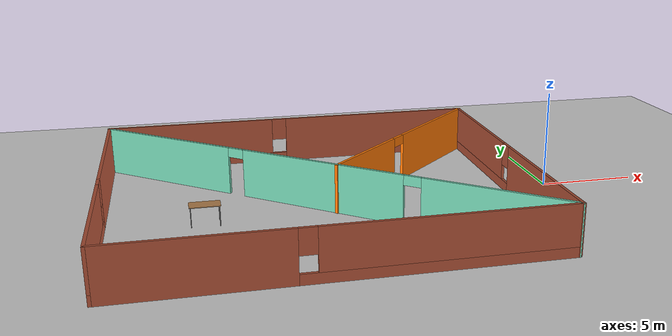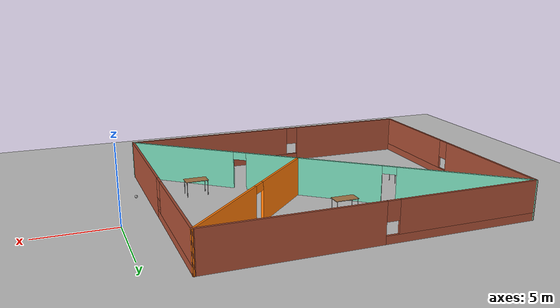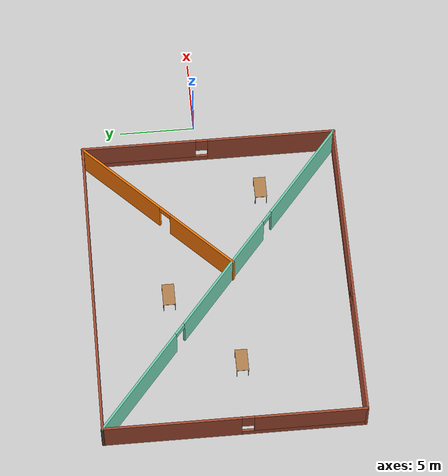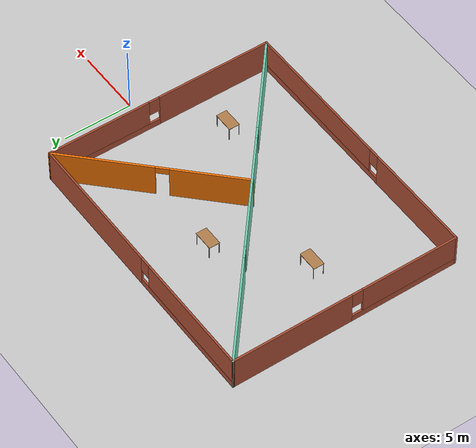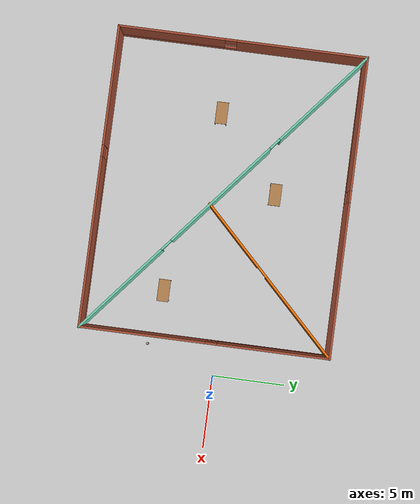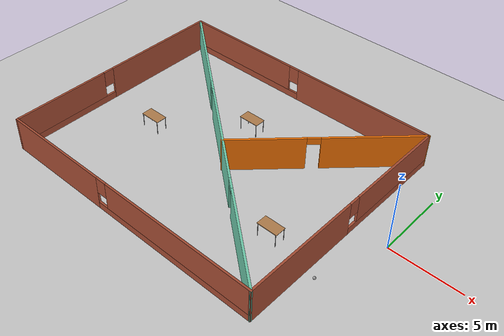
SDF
<sdf version="1.6">
 <world name="default">
  <light name="sun" type="directional">
   <pose>0 0 10 0 -0 0</pose>
   <diffuse>0.8 0.8 0.8 1</diffuse>
   <specular>0.2 0.2 0.2 1</specular>
   <attenuation>
    <range>1000</range>
    <constant>0.9</constant>
    <linear>0.01</linear>
    <quadratic>0.001</quadratic>
   </attenuation>
   <direction>-0.5 0.1 -0.9</direction>
  </light>
  <model name="ground_plane">
   <static>1</static>
   <link name="link">
    <collision name="collision">
     <geometry><plane><normal>0 0 1</normal><size>100 100</size></plane></geometry>
     <surface>
      <contact><collide_bitmask>65535</collide_bitmask></contact>
      <friction><ode><mu>100</mu><mu2>50</mu2></ode></friction>
     </surface>
    </collision>
    <visual name="visual">
     <cast_shadows>0</cast_shadows>
     <geometry><plane><normal>0 0 1</normal><size>100 100</size></plane></geometry>
     <material>
      <script><uri>file://media/materials/scripts/gazebo.material</uri><name>Gazebo/Grey</name></script>
     </material>
    </visual>
   </link>
  </model>
  <gravity>0 0 -9.8</gravity>
  <magnetic_field>6e-06 2.3e-05 -4.2e-05</magnetic_field>
  <atmosphere type="adiabatic"/>
  <physics name="default_physics" default="0" type="ode">
   <max_step_size>0.001</max_step_size>
   <real_time_factor>1</real_time_factor>
   <real_time_update_rate>1000</real_time_update_rate>
  </physics>
  <scene><ambient>0.4 0.4 0.4 1</ambient><background>0.7 0.7 0.7 1</background><shadows>1</shadows></scene>
  <spherical_coordinates>
   <surface_model>EARTH_WGS84</surface_model>
   <latitude_deg>0</latitude_deg>
   <longitude_deg>0</longitude_deg>
   <elevation>0</elevation>
   <heading_deg>0</heading_deg>
  </spherical_coordinates>
  <model name="world_0">
   <pose>-12.5522 -0.825797 0 0 -0 0</pose>
   <link name="Wall_0">
    <pose>-10.1752 -0.000233 0 0 0 -1.5708</pose>
    <visual name="Wall_0_Visual_0">
     <pose>-4.03638 0 1.25 0 -0 0</pose>
     <geometry><box><size>8.92724 0.15 2.5</size></box></geometry>
     <material>
      <script><uri>file://media/materials/scripts/gazebo.material</uri><name>Gazebo/Bricks</name></script>
      <ambient>1 1 1 1</ambient>
     </material>
     <meta><layer>0</layer></meta>
    </visual>
    <collision name="Wall_0_Collision_0">
     <geometry><box><size>8.92724 0.15 2.5</size></box></geometry>
     <pose>-4.03638 0 1.25 0 -0 0</pose>
    </collision>
    <visual name="Wall_0_Visual_1">
     <pose>4.46362 0 0.25 0 -0 0</pose>
     <geometry><box><size>8.07276 0.15 0.5</size></box></geometry>
     <material>
      <script><uri>file://media/materials/scripts/gazebo.material</uri><name>Gazebo/Bricks</name></script>
      <ambient>1 1 1 1</ambient>
     </material>
     <meta><layer>0</layer></meta>
    </visual>
    <collision name="Wall_0_Collision_1">
     <geometry><box><size>8.07276 0.15 0.5</size></box></geometry>
     <pose>4.46362 0 0.25 0 -0 0</pose>
    </collision>
    <visual name="Wall_0_Visual_2">
     <pose>4.86362 0 1.5 0 -0 0</pose>
     <geometry><box><size>7.27276 0.15 2</size></box></geometry>
     <material>
      <script><uri>file://media/materials/scripts/gazebo.material</uri><name>Gazebo/Bricks</name></script>
      <ambient>1 1 1 1</ambient>
     </material>
     <meta><layer>0</layer></meta>
    </visual>
    <collision name="Wall_0_Collision_2">
     <geometry><box><size>7.27276 0.15 2</size></box></geometry>
     <pose>4.86362 0 1.5 0 -0 0</pose>
    </collision>
    <visual name="Wall_0_Visual_3">
     <pose>0.827243 0 1.9 0 -0 0</pose>
     <geometry><box><size>0.8 0.15 1.2</size></box></geometry>
     <material>
      <script><uri>file://media/materials/scripts/gazebo.material</uri><name>Gazebo/Bricks</name></script>
      <ambient>1 1 1 1</ambient>
     </material>
     <meta><layer>0</layer></meta>
    </visual>
    <collision name="Wall_0_Collision_3">
     <geometry><box><size>0.8 0.15 1.2</size></box></geometry>
     <pose>0.827243 0 1.9 0 -0 0</pose>
    </collision>
   </link>
   <link name="Wall_1">
    <pose>-0.000233 -8.42523 0 0 -0 0</pose>
    <visual name="Wall_1_Visual_0">
     <pose>-6.16854 0 1.25 0 -0 0</pose>
     <geometry><box><size>8.16293 0.15 2.5</size></box></geometry>
     <material>
      <script><uri>file://media/materials/scripts/gazebo.material</uri><name>Gazebo/Bricks</name></script>
      <ambient>1 1 1 1</ambient>
     </material>
     <meta><layer>0</layer></meta>
    </visual>
    <collision name="Wall_1_Collision_0">
     <geometry><box><size>8.16293 0.15 2.5</size></box></geometry>
     <pose>-6.16854 0 1.25 0 -0 0</pose>
    </collision>
    <visual name="Wall_1_Visual_1">
     <pose>4.08146 0 0.25 0 -0 0</pose>
     <geometry><box><size>12.3371 0.15 0.5</size></box></geometry>
     <material>
      <script><uri>file://media/materials/scripts/gazebo.material</uri><name>Gazebo/Bricks</name></script>
      <ambient>1 1 1 1</ambient>
     </material>
     <meta><layer>0</layer></meta>
    </visual>
    <collision name="Wall_1_Collision_1">
     <geometry><box><size>12.3371 0.15 0.5</size></box></geometry>
     <pose>4.08146 0 0.25 0 -0 0</pose>
    </collision>
    <visual name="Wall_1_Visual_2">
     <pose>4.48146 0 1.5 0 -0 0</pose>
     <geometry><box><size>11.5371 0.15 2</size></box></geometry>
     <material>
      <script><uri>file://media/materials/scripts/gazebo.material</uri><name>Gazebo/Bricks</name></script>
      <ambient>1 1 1 1</ambient>
     </material>
     <meta><layer>0</layer></meta>
    </visual>
    <collision name="Wall_1_Collision_2">
     <geometry><box><size>11.5371 0.15 2</size></box></geometry>
     <pose>4.48146 0 1.5 0 -0 0</pose>
    </collision>
    <visual name="Wall_1_Visual_3">
     <pose>-1.68707 0 1.9 0 -0 0</pose>
     <geometry><box><size>0.8 0.15 1.2</size></box></geometry>
     <material>
      <script><uri>file://media/materials/scripts/gazebo.material</uri><name>Gazebo/Bricks</name></script>
      <ambient>1 1 1 1</ambient>
     </material>
     <meta><layer>0</layer></meta>
    </visual>
    <collision name="Wall_1_Collision_3">
     <geometry><box><size>0.8 0.15 1.2</size></box></geometry>
     <pose>-1.68707 0 1.9 0 -0 0</pose>
    </collision>
   </link>
   <link name="Wall_2">
    <pose>10.1748 -0.000233 0 0 -0 1.5708</pose>
    <visual name="Wall_2_Visual_0">
     <pose>-4.21999 0 1.25 0 -0 0</pose>
     <geometry><box><size>8.56003 0.15 2.5</size></box></geometry>
     <material>
      <script><uri>file://media/materials/scripts/gazebo.material</uri><name>Gazebo/Bricks</name></script>
      <ambient>1 1 1 1</ambient>
     </material>
     <meta><layer>0</layer></meta>
    </visual>
    <collision name="Wall_2_Collision_0">
     <geometry><box><size>8.56003 0.15 2.5</size></box></geometry>
     <pose>-4.21999 0 1.25 0 -0 0</pose>
    </collision>
    <visual name="Wall_2_Visual_1">
     <pose>4.28001 0 0.25 0 -0 0</pose>
     <geometry><box><size>8.43997 0.15 0.5</size></box></geometry>
     <material>
      <script><uri>file://media/materials/scripts/gazebo.material</uri><name>Gazebo/Bricks</name></script>
      <ambient>1 1 1 1</ambient>
     </material>
     <meta><layer>0</layer></meta>
    </visual>
    <collision name="Wall_2_Collision_1">
     <geometry><box><size>8.43997 0.15 0.5</size></box></geometry>
     <pose>4.28001 0 0.25 0 -0 0</pose>
    </collision>
    <visual name="Wall_2_Visual_2">
     <pose>4.68001 0 1.5 0 -0 0</pose>
     <geometry><box><size>7.63997 0.15 2</size></box></geometry>
     <material>
      <script><uri>file://media/materials/scripts/gazebo.material</uri><name>Gazebo/Bricks</name></script>
      <ambient>1 1 1 1</ambient>
     </material>
     <meta><layer>0</layer></meta>
    </visual>
    <collision name="Wall_2_Collision_2">
     <geometry><box><size>7.63997 0.15 2</size></box></geometry>
     <pose>4.68001 0 1.5 0 -0 0</pose>
    </collision>
    <visual name="Wall_2_Visual_3">
     <pose>0.460026 0 1.9 0 -0 0</pose>
     <geometry><box><size>0.8 0.15 1.2</size></box></geometry>
     <material>
      <script><uri>file://media/materials/scripts/gazebo.material</uri><name>Gazebo/Bricks</name></script>
      <ambient>1 1 1 1</ambient>
     </material>
     <meta><layer>0</layer></meta>
    </visual>
    <collision name="Wall_2_Collision_3">
     <geometry><box><size>0.8 0.15 1.2</size></box></geometry>
     <pose>0.460026 0 1.9 0 -0 0</pose>
    </collision>
   </link>
   <link name="Wall_3">
    <pose>-0.000233 8.42477 0 0 -0 3.14159</pose>
    <visual name="Wall_3_Visual_0">
     <pose>-4.94408 0 1.25 0 -0 0</pose>
     <geometry><box><size>10.6118 0.15 2.5</size></box></geometry>
     <material>
      <script><uri>file://media/materials/scripts/gazebo.material</uri><name>Gazebo/Bricks</name></script>
      <ambient>1 1 1 1</ambient>
     </material>
     <meta><layer>0</layer></meta>
    </visual>
    <collision name="Wall_3_Collision_0">
     <geometry><box><size>10.6118 0.15 2.5</size></box></geometry>
     <pose>-4.94408 0 1.25 0 -0 0</pose>
    </collision>
    <visual name="Wall_3_Visual_1">
     <pose>5.30592 0 0.25 0 -0 0</pose>
     <geometry><box><size>9.88815 0.15 0.5</size></box></geometry>
     <material>
      <script><uri>file://media/materials/scripts/gazebo.material</uri><name>Gazebo/Bricks</name></script>
      <ambient>1 1 1 1</ambient>
     </material>
     <meta><layer>0</layer></meta>
    </visual>
    <collision name="Wall_3_Collision_1">
     <geometry><box><size>9.88815 0.15 0.5</size></box></geometry>
     <pose>5.30592 0 0.25 0 -0 0</pose>
    </collision>
    <visual name="Wall_3_Visual_2">
     <pose>5.70592 0 1.5 0 -0 0</pose>
     <geometry><box><size>9.08815 0.15 2</size></box></geometry>
     <material>
      <script><uri>file://media/materials/scripts/gazebo.material</uri><name>Gazebo/Bricks</name></script>
      <ambient>1 1 1 1</ambient>
     </material>
     <meta><layer>0</layer></meta>
    </visual>
    <collision name="Wall_3_Collision_2">
     <geometry><box><size>9.08815 0.15 2</size></box></geometry>
     <pose>5.70592 0 1.5 0 -0 0</pose>
    </collision>
    <visual name="Wall_3_Visual_3">
     <pose>0.761848 0 1.9 0 -0 0</pose>
     <geometry><box><size>0.8 0.15 1.2</size></box></geometry>
     <material>
      <script><uri>file://media/materials/scripts/gazebo.material</uri><name>Gazebo/Bricks</name></script>
      <ambient>1 1 1 1</ambient>
     </material>
     <meta><layer>0</layer></meta>
    </visual>
    <collision name="Wall_3_Collision_3">
     <geometry><box><size>0.8 0.15 1.2</size></box></geometry>
     <pose>0.761848 0 1.9 0 -0 0</pose>
    </collision>
   </link>
   <link name="Wall_4">
    <pose>-0.000233 -0.000233 0 0 0 -0.691588</pose>
    <visual name="Wall_4_Visual_0">
     <pose>-9.22114 0 1.25 0 -0 0</pose>
     <geometry><box><size>8.12825 0.15 2.5</size></box></geometry>
     <material>
      <script><uri>file://media/materials/scripts/gazebo.material</uri><name>Gazebo/Grey</name></script>
      <ambient>0.435294 0.796078 0.67451 1</ambient>
     </material>
     <meta><layer>0</layer></meta>
    </visual>
    <collision name="Wall_4_Collision_0">
     <geometry><box><size>8.12825 0.15 2.5</size></box></geometry>
     <pose>-9.22114 0 1.25 0 -0 0</pose>
    </collision>
    <visual name="Wall_4_Visual_1">
     <pose>0.265927 0 1.25 0 -0 0</pose>
     <geometry><box><size>9.04589 0.15 2.5</size></box></geometry>
     <material>
      <script><uri>file://media/materials/scripts/gazebo.material</uri><name>Gazebo/Grey</name></script>
      <ambient>0.435294 0.796078 0.67451 1</ambient>
     </material>
     <meta><layer>0</layer></meta>
    </visual>
    <collision name="Wall_4_Collision_1">
     <geometry><box><size>9.04589 0.15 2.5</size></box></geometry>
     <pose>0.265927 0 1.25 0 -0 0</pose>
    </collision>
    <visual name="Wall_4_Visual_2">
     <pose>9.48707 0 1.25 0 -0 0</pose>
     <geometry><box><size>7.5964 0.15 2.5</size></box></geometry>
     <material>
      <script><uri>file://media/materials/scripts/gazebo.material</uri><name>Gazebo/Grey</name></script>
      <ambient>0.435294 0.796078 0.67451 1</ambient>
     </material>
     <meta><layer>0</layer></meta>
    </visual>
    <collision name="Wall_4_Collision_2">
     <geometry><box><size>7.5964 0.15 2.5</size></box></geometry>
     <pose>9.48707 0 1.25 0 -0 0</pose>
    </collision>
    <visual name="Wall_4_Visual_3">
     <pose>-4.70702 0 2.25 0 -0 0</pose>
     <geometry><box><size>0.9 0.15 0.5</size></box></geometry>
     <material>
      <script><uri>file://media/materials/scripts/gazebo.material</uri><name>Gazebo/Grey</name></script>
      <ambient>0.435294 0.796078 0.67451 1</ambient>
     </material>
     <meta><layer>0</layer></meta>
    </visual>
    <collision name="Wall_4_Collision_3">
     <geometry><box><size>0.9 0.15 0.5</size></box></geometry>
     <pose>-4.70702 0 2.25 0 -0 0</pose>
    </collision>
    <visual name="Wall_4_Visual_4">
     <pose>5.23887 0 2.25 0 -0 0</pose>
     <geometry><box><size>0.9 0.15 0.5</size></box></geometry>
     <material>
      <script><uri>file://media/materials/scripts/gazebo.material</uri><name>Gazebo/Grey</name></script>
      <ambient>0.435294 0.796078 0.67451 1</ambient>
     </material>
     <meta><layer>0</layer></meta>
    </visual>
    <collision name="Wall_4_Collision_4">
     <geometry><box><size>0.9 0.15 0.5</size></box></geometry>
     <pose>5.23887 0 2.25 0 -0 0</pose>
    </collision>
   </link>
   <link name="Wall_6">
    <pose>5.54322 3.79322 0 0 0 -2.35619</pose>
    <visual name="Wall_6_Visual_0">
     <pose>-3.1733 0 1.25 0 -0 0</pose>
     <geometry><box><size>6.9034 0.15 2.5</size></box></geometry>
     <material>
      <script><uri>file://media/materials/scripts/gazebo.material</uri><name>Gazebo/Grey</name></script>
      <ambient>0.996078 0.47451 0.0196078 1</ambient>
     </material>
     <meta><layer>0</layer></meta>
    </visual>
    <collision name="Wall_6_Collision_0">
     <geometry><box><size>6.9034 0.15 2.5</size></box></geometry>
     <pose>-3.1733 0 1.25 0 -0 0</pose>
    </collision>
    <visual name="Wall_6_Visual_1">
     <pose>3.9017 0 1.25 0 -0 0</pose>
     <geometry><box><size>5.4466 0.15 2.5</size></box></geometry>
     <material>
      <script><uri>file://media/materials/scripts/gazebo.material</uri><name>Gazebo/Grey</name></script>
      <ambient>0.996078 0.47451 0.0196078 1</ambient>
     </material>
     <meta><layer>0</layer></meta>
    </visual>
    <collision name="Wall_6_Collision_1">
     <geometry><box><size>5.4466 0.15 2.5</size></box></geometry>
     <pose>3.9017 0 1.25 0 -0 0</pose>
    </collision>
    <visual name="Wall_6_Visual_2">
     <pose>0.728401 0 2.25 0 -0 0</pose>
     <geometry><box><size>0.9 0.15 0.5</size></box></geometry>
     <material>
      <script><uri>file://media/materials/scripts/gazebo.material</uri><name>Gazebo/Grey</name></script>
      <ambient>0.996078 0.47451 0.0196078 1</ambient>
     </material>
     <meta><layer>0</layer></meta>
    </visual>
    <collision name="Wall_6_Collision_2">
     <geometry><box><size>0.9 0.15 0.5</size></box></geometry>
     <pose>0.728401 0 2.25 0 -0 0</pose>
    </collision>
   </link>
   <static>1</static>
  </model>
  <model name="table">
   <static>1</static>
   <link name="link">
    <collision name="surface">
     <pose>0 0 1 0 -0 0</pose>
     <geometry><box><size>1.5 0.8 0.03</size></box></geometry>
     <surface><friction><ode><mu>0.6</mu><mu2>0.6</mu2></ode></friction></surface>
    </collision>
    <visual name="visual1">
     <pose>0 0 1 0 -0 0</pose>
     <geometry><box><size>1.5 0.8 0.03</size></box></geometry>
     <material>
      <script><uri>file://media/materials/scripts/gazebo.material</uri><name>Gazebo/Wood</name></script>
     </material>
    </visual>
    <collision name="front_left_leg">
     <pose>0.68 0.38 0.5 0 -0 0</pose>
     <geometry><cylinder><radius>0.02</radius><length>1</length></cylinder></geometry>
    </collision>
    <visual name="front_left_leg">
     <pose>0.68 0.38 0.5 0 -0 0</pose>
     <geometry><cylinder><radius>0.02</radius><length>1</length></cylinder></geometry>
     <material>
      <script><uri>file://media/materials/scripts/gazebo.material</uri><name>Gazebo/Grey</name></script>
     </material>
    </visual>
    <collision name="front_right_leg">
     <pose>0.68 -0.38 0.5 0 -0 0</pose>
     <geometry><cylinder><radius>0.02</radius><length>1</length></cylinder></geometry>
    </collision>
    <visual name="front_right_leg">
     <pose>0.68 -0.38 0.5 0 -0 0</pose>
     <geometry><cylinder><radius>0.02</radius><length>1</length></cylinder></geometry>
     <material>
      <script><uri>file://media/materials/scripts/gazebo.material</uri><name>Gazebo/Grey</name></script>
     </material>
    </visual>
    <collision name="back_right_leg">
     <pose>-0.68 -0.38 0.5 0 -0 0</pose>
     <geometry><cylinder><radius>0.02</radius><length>1</length></cylinder></geometry>
    </collision>
    <visual name="back_right_leg">
     <pose>-0.68 -0.38 0.5 0 -0 0</pose>
     <geometry><cylinder><radius>0.02</radius><length>1</length></cylinder></geometry>
     <material>
      <script><uri>file://media/materials/scripts/gazebo.material</uri><name>Gazebo/Grey</name></script>
     </material>
    </visual>
    <collision name="back_left_leg">
     <pose>-0.68 0.38 0.5 0 -0 0</pose>
     <geometry><cylinder><radius>0.02</radius><length>1</length></cylinder></geometry>
    </collision>
    <visual name="back_left_leg">
     <pose>-0.68 0.38 0.5 0 -0 0</pose>
     <geometry><cylinder><radius>0.02</radius><length>1</length></cylinder></geometry>
     <material>
      <script><uri>file://media/materials/scripts/gazebo.material</uri><name>Gazebo/Grey</name></script>
     </material>
    </visual>
   </link>
   <pose>-12.908 2.67749 0 0 -0 0</pose>
  </model>
  <model name="table_0">
   <static>1</static>
   <link name="link">
    <collision name="surface">
     <pose>0 0 1 0 -0 0</pose>
     <geometry><box><size>1.5 0.8 0.03</size></box></geometry>
     <surface><friction><ode><mu>0.6</mu><mu2>0.6</mu2></ode></friction></surface>
    </collision>
    <visual name="visual1">
     <pose>0 0 1 0 -0 0</pose>
     <geometry><box><size>1.5 0.8 0.03</size></box></geometry>
     <material>
      <script><uri>file://media/materials/scripts/gazebo.material</uri><name>Gazebo/Wood</name></script>
     </material>
    </visual>
    <collision name="front_left_leg">
     <pose>0.68 0.38 0.5 0 -0 0</pose>
     <geometry><cylinder><radius>0.02</radius><length>1</length></cylinder></geometry>
    </collision>
    <visual name="front_left_leg">
     <pose>0.68 0.38 0.5 0 -0 0</pose>
     <geometry><cylinder><radius>0.02</radius><length>1</length></cylinder></geometry>
     <material>
      <script><uri>file://media/materials/scripts/gazebo.material</uri><name>Gazebo/Grey</name></script>
     </material>
    </visual>
    <collision name="front_right_leg">
     <pose>0.68 -0.38 0.5 0 -0 0</pose>
     <geometry><cylinder><radius>0.02</radius><length>1</length></cylinder></geometry>
    </collision>
    <visual name="front_right_leg">
     <pose>0.68 -0.38 0.5 0 -0 0</pose>
     <geometry><cylinder><radius>0.02</radius><length>1</length></cylinder></geometry>
     <material>
      <script><uri>file://media/materials/scripts/gazebo.material</uri><name>Gazebo/Grey</name></script>
     </material>
    </visual>
    <collision name="back_right_leg">
     <pose>-0.68 -0.38 0.5 0 -0 0</pose>
     <geometry><cylinder><radius>0.02</radius><length>1</length></cylinder></geometry>
    </collision>
    <visual name="back_right_leg">
     <pose>-0.68 -0.38 0.5 0 -0 0</pose>
     <geometry><cylinder><radius>0.02</radius><length>1</length></cylinder></geometry>
     <material>
      <script><uri>file://media/materials/scripts/gazebo.material</uri><name>Gazebo/Grey</name></script>
     </material>
    </visual>
    <collision name="back_left_leg">
     <pose>-0.68 0.38 0.5 0 -0 0</pose>
     <geometry><cylinder><radius>0.02</radius><length>1</length></cylinder></geometry>
    </collision>
    <visual name="back_left_leg">
     <pose>-0.68 0.38 0.5 0 -0 0</pose>
     <geometry><cylinder><radius>0.02</radius><length>1</length></cylinder></geometry>
     <material>
      <script><uri>file://media/materials/scripts/gazebo.material</uri><name>Gazebo/Grey</name></script>
     </material>
    </visual>
   </link>
   <pose>-5.44883 -4.03489 0 0 -0 0</pose>
  </model>
  <model name="table_1">
   <static>1</static>
   <link name="link">
    <collision name="surface">
     <pose>0 0 1 0 -0 0</pose>
     <geometry><box><size>1.5 0.8 0.03</size></box></geometry>
     <surface><friction><ode><mu>0.6</mu><mu2>0.6</mu2></ode></friction></surface>
    </collision>
    <visual name="visual1">
     <pose>0 0 1 0 -0 0</pose>
     <geometry><box><size>1.5 0.8 0.03</size></box></geometry>
     <material>
      <script><uri>file://media/materials/scripts/gazebo.material</uri><name>Gazebo/Wood</name></script>
     </material>
    </visual>
    <collision name="front_left_leg">
     <pose>0.68 0.38 0.5 0 -0 0</pose>
     <geometry><cylinder><radius>0.02</radius><length>1</length></cylinder></geometry>
    </collision>
    <visual name="front_left_leg">
     <pose>0.68 0.38 0.5 0 -0 0</pose>
     <geometry><cylinder><radius>0.02</radius><length>1</length></cylinder></geometry>
     <material>
      <script><uri>file://media/materials/scripts/gazebo.material</uri><name>Gazebo/Grey</name></script>
     </material>
    </visual>
    <collision name="front_right_leg">
     <pose>0.68 -0.38 0.5 0 -0 0</pose>
     <geometry><cylinder><radius>0.02</radius><length>1</length></cylinder></geometry>
    </collision>
    <visual name="front_right_leg">
     <pose>0.68 -0.38 0.5 0 -0 0</pose>
     <geometry><cylinder><radius>0.02</radius><length>1</length></cylinder></geometry>
     <material>
      <script><uri>file://media/materials/scripts/gazebo.material</uri><name>Gazebo/Grey</name></script>
     </material>
    </visual>
    <collision name="back_right_leg">
     <pose>-0.68 -0.38 0.5 0 -0 0</pose>
     <geometry><cylinder><radius>0.02</radius><length>1</length></cylinder></geometry>
    </collision>
    <visual name="back_right_leg">
     <pose>-0.68 -0.38 0.5 0 -0 0</pose>
     <geometry><cylinder><radius>0.02</radius><length>1</length></cylinder></geometry>
     <material>
      <script><uri>file://media/materials/scripts/gazebo.material</uri><name>Gazebo/Grey</name></script>
     </material>
    </visual>
    <collision name="back_left_leg">
     <pose>-0.68 0.38 0.5 0 -0 0</pose>
     <geometry><cylinder><radius>0.02</radius><length>1</length></cylinder></geometry>
    </collision>
    <visual name="back_left_leg">
     <pose>-0.68 0.38 0.5 0 -0 0</pose>
     <geometry><cylinder><radius>0.02</radius><length>1</length></cylinder></geometry>
     <material>
      <script><uri>file://media/materials/scripts/gazebo.material</uri><name>Gazebo/Grey</name></script>
     </material>
    </visual>
   </link>
   <pose>-18.0209 -1.67407 0 0 -0 0</pose>
  </model>
  <model name="wht_ball">
   <link name="link_0">
    <inertial>
     <mass>1</mass>
     <inertia><ixx>0.1</ixx><ixy>0</ixy><ixz>0</ixz><iyy>0.1</iyy><iyz>0</iyz><izz>0.1</izz></inertia>
    </inertial>
    <visual name="visual">
     <geometry><sphere><radius>0.1</radius></sphere></geometry>
     <material>
      <lighting>1</lighting>
      <script><uri>file://media/materials/scripts/gazebo.material</uri><name>Gazebo/Grey</name></script>
      <shader type="pixel"><normal_map>__default__</normal_map></shader>
      <ambient>1 1 1 1</ambient>
      <diffuse>1 1 1 1</diffuse>
      <specular>1 1 1 1</specular>
      <emissive>1 1 1 1</emissive>
     </material>
    </visual>
    <collision name="collision">
     <geometry><sphere><radius>0.1</radius></sphere></geometry>
     <surface>
      <friction>
       <ode><mu>1</mu><mu2>1</mu2><fdir1>0 0 0</fdir1><slip1>0</slip1><slip2>0</slip2></ode>
       <torsional>
        <coefficient>1</coefficient>
        <patch_radius>0</patch_radius>
        <surface_radius>0</surface_radius>
        <use_patch_radius>1</use_patch_radius>
        <ode><slip>0</slip></ode>
       </torsional>
      </friction>
      <bounce><restitution_coefficient>0</restitution_coefficient><threshold>1e+06</threshold></bounce>
      <contact>
       <collide_without_contact>0</collide_without_contact>
       <collide_without_contact_bitmask>1</collide_without_contact_bitmask>
       <collide_bitmask>1</collide_bitmask>
       <ode>
        <soft_cfm>0</soft_cfm>
        <soft_erp>0.2</soft_erp>
        <kp>1e+13</kp>
        <kd>1</kd>
        <max_vel>0.01</max_vel>
        <min_depth>0</min_depth>
       </ode>
       <bullet>
        <split_impulse>1</split_impulse>
        <split_impulse_penetration_threshold>-0.01</split_impulse_penetration_threshold>
        <soft_cfm>0</soft_cfm>
        <soft_erp>0.2</soft_erp>
        <kp>1e+13</kp>
        <kd>1</kd>
       </bullet>
      </contact>
     </surface>
    </collision>
   </link>
   <static>0</static>
   <pose>-1.64641 -4.71897 0.1 0 -0 0</pose>
  </model>
 </world>
</sdf>
